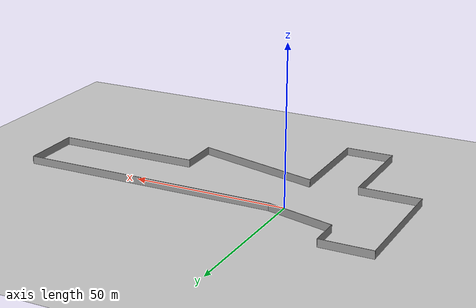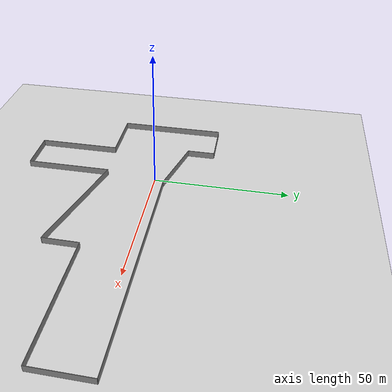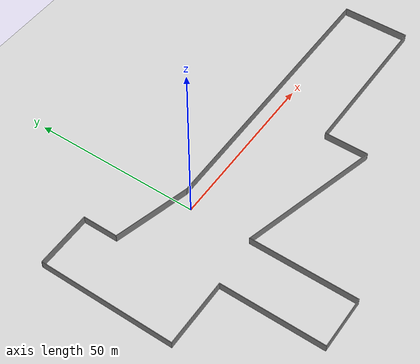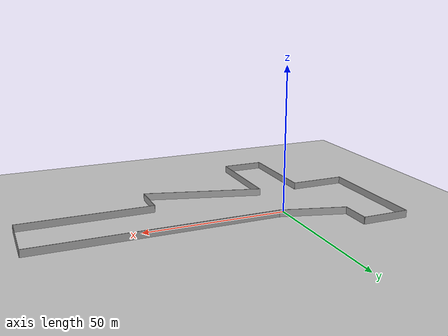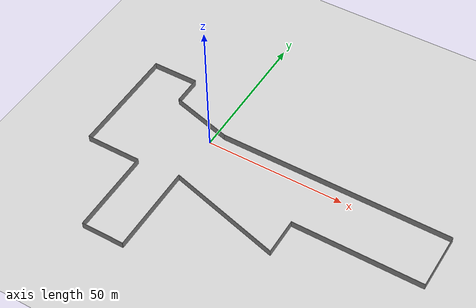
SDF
<sdf version="1.7">
 <world name="default">
  <light name="sun" type="directional">
   <pose>0 0 10 0 -0 0</pose>
   <diffuse>0.8 0.8 0.8 1</diffuse>
   <specular>0.2 0.2 0.2 1</specular>
   <attenuation>
    <range>1000</range>
    <constant>0.9</constant>
    <linear>0.01</linear>
    <quadratic>0.001</quadratic>
   </attenuation>
   <direction>-0.5 0.1 -0.9</direction>
   <spot><inner_angle>0</inner_angle><outer_angle>0</outer_angle><falloff>0</falloff></spot>
  </light>
  <model name="ground_plane">
   <static>1</static>
   <link name="link">
    <collision name="collision">
     <geometry><plane><normal>0 0 1</normal><size>100 100</size></plane></geometry>
     <surface><friction><ode><mu>100</mu><mu2>50</mu2></ode></friction></surface>
    </collision>
    <visual name="visual">
     <cast_shadows>0</cast_shadows>
     <geometry><plane><normal>0 0 1</normal><size>100 100</size></plane></geometry>
     <material>
      <script><uri>file://media/materials/scripts/gazebo.material</uri><name>Gazebo/Grey</name></script>
     </material>
    </visual>
   </link>
  </model>
  <gravity>0 0 -9.8</gravity>
  <magnetic_field>6e-06 2.3e-05 -4.2e-05</magnetic_field>
  <atmosphere type="adiabatic"/>
  <physics type="ode">
   <max_step_size>0.001</max_step_size>
   <real_time_factor>1</real_time_factor>
   <real_time_update_rate>1000</real_time_update_rate>
  </physics>
  <scene><ambient>0.4 0.4 0.4 1</ambient><background>0.7 0.7 0.7 1</background><shadows>1</shadows></scene>
  <audio><device>default</device></audio>
  <spherical_coordinates>
   <surface_model>EARTH_WGS84</surface_model>
   <latitude_deg>0</latitude_deg>
   <longitude_deg>0</longitude_deg>
   <elevation>0</elevation>
   <heading_deg>0</heading_deg>
  </spherical_coordinates>
  <model name="UTCH">
   <pose>25.8328 -14.9627 0 0 -0 0</pose>
   <link name="Wall_10">
    <collision name="Wall_10_Collision">
     <geometry><box><size>16.75 0.15 2.5</size></box></geometry>
     <pose>0 0 1.25 0 -0 0</pose>
    </collision>
    <visual name="Wall_10_Visual">
     <pose>0 0 1.25 0 -0 0</pose>
     <geometry><box><size>16.75 0.15 2.5</size></box></geometry>
     <material>
      <script><uri>file://media/materials/scripts/gazebo.material</uri><name>Gazebo/Grey</name></script>
      <ambient>1 1 1 1</ambient>
     </material>
     <meta><layer>0</layer></meta>
    </visual>
    <pose>-52.9285 35.1 0 0 -0 3.14159</pose>
   </link>
   <link name="Wall_11">
    <collision name="Wall_11_Collision">
     <geometry><box><size>40 0.15 2.5</size></box></geometry>
     <pose>0 0 1.25 0 -0 0</pose>
    </collision>
    <visual name="Wall_11_Visual">
     <pose>0 0 1.25 0 -0 0</pose>
     <geometry><box><size>40 0.15 2.5</size></box></geometry>
     <material>
      <script><uri>file://media/materials/scripts/gazebo.material</uri><name>Gazebo/Grey</name></script>
      <ambient>1 1 1 1</ambient>
     </material>
     <meta><layer>0</layer></meta>
    </visual>
    <pose>-61.2285 15.175 0 0 -0 -1.5708</pose>
   </link>
   <link name="Wall_12">
    <collision name="Wall_12_Collision">
     <geometry><box><size>20 0.15 2.5</size></box></geometry>
     <pose>0 0 1.25 0 -0 0</pose>
    </collision>
    <visual name="Wall_12_Visual">
     <pose>0 0 1.25 0 -0 0</pose>
     <geometry><box><size>20 0.15 2.5</size></box></geometry>
     <material>
      <script><uri>file://media/materials/scripts/gazebo.material</uri><name>Gazebo/Grey</name></script>
      <ambient>1 1 1 1</ambient>
     </material>
     <meta><layer>0</layer></meta>
    </visual>
    <pose>-51.3035 -4.75 0 0 -0 0</pose>
   </link>
   <link name="Wall_13">
    <collision name="Wall_13_Collision">
     <geometry><box><size>30.5 0.15 2.5</size></box></geometry>
     <pose>0 0 1.25 0 -0 0</pose>
    </collision>
    <visual name="Wall_13_Visual">
     <pose>0 0 1.25 0 -0 0</pose>
     <geometry><box><size>30.5 0.15 2.5</size></box></geometry>
     <material>
      <script><uri>file://media/materials/scripts/gazebo.material</uri><name>Gazebo/Grey</name></script>
      <ambient>1 1 1 1</ambient>
     </material>
     <meta><layer>0</layer></meta>
    </visual>
    <pose>-41.3785 -19.925 0 0 -0 -1.5708</pose>
   </link>
   <link name="Wall_14">
    <collision name="Wall_14_Collision">
     <geometry><box><size>15.5 0.15 2.5</size></box></geometry>
     <pose>0 0 1.25 0 -0 0</pose>
    </collision>
    <visual name="Wall_14_Visual">
     <pose>0 0 1.25 0 -0 0</pose>
     <geometry><box><size>15.5 0.15 2.5</size></box></geometry>
     <material>
      <script><uri>file://media/materials/scripts/gazebo.material</uri><name>Gazebo/Grey</name></script>
      <ambient>1 1 1 1</ambient>
     </material>
     <meta><layer>0</layer></meta>
    </visual>
    <pose>-33.7035 -35.1 0 0 -0 0</pose>
   </link>
   <link name="Wall_15">
    <collision name="Wall_15_Collision">
     <geometry><box><size>31.75 0.15 2.5</size></box></geometry>
     <pose>0 0 1.25 0 -0 0</pose>
    </collision>
    <visual name="Wall_15_Visual">
     <pose>0 0 1.25 0 -0 0</pose>
     <geometry><box><size>31.75 0.15 2.5</size></box></geometry>
     <material>
      <script><uri>file://media/materials/scripts/gazebo.material</uri><name>Gazebo/Grey</name></script>
      <ambient>1 1 1 1</ambient>
     </material>
     <meta><layer>0</layer></meta>
    </visual>
    <pose>-26.0285 -19.3 0 0 -0 1.5708</pose>
   </link>
   <link name="Wall_16">
    <collision name="Wall_16_Collision">
     <geometry><box><size>42.5 0.15 2.5</size></box></geometry>
     <pose>0 0 1.25 0 -0 0</pose>
    </collision>
    <visual name="Wall_16_Visual">
     <pose>0 0 1.25 0 -0 0</pose>
     <geometry><box><size>42.5 0.15 2.5</size></box></geometry>
     <material>
      <script><uri>file://media/materials/scripts/gazebo.material</uri><name>Gazebo/Grey</name></script>
      <ambient>1 1 1 1</ambient>
     </material>
     <meta><layer>0</layer></meta>
    </visual>
    <pose>-5.575 -8.98049 0 0 -0 -0.261799</pose>
   </link>
   <link name="Wall_17">
    <collision name="Wall_17_Collision">
     <geometry><box><size>13.25 0.15 2.5</size></box></geometry>
     <pose>0 0 1.25 0 -0 0</pose>
    </collision>
    <visual name="Wall_17_Visual">
     <pose>0 0 1.25 0 -0 0</pose>
     <geometry><box><size>13.25 0.15 2.5</size></box></geometry>
     <material>
      <script><uri>file://media/materials/scripts/gazebo.material</uri><name>Gazebo/Grey</name></script>
      <ambient>1 1 1 1</ambient>
     </material>
     <meta><layer>0</layer></meta>
    </visual>
    <pose>14.8785 -7.91099 0 0 -0 1.5708</pose>
   </link>
   <link name="Wall_18">
    <collision name="Wall_18_Collision">
     <geometry><box><size>46.5 0.15 2.5</size></box></geometry>
     <pose>0 0 1.25 0 -0 0</pose>
    </collision>
    <visual name="Wall_18_Visual">
     <pose>0 0 1.25 0 -0 0</pose>
     <geometry><box><size>46.5 0.15 2.5</size></box></geometry>
     <material>
      <script><uri>file://media/materials/scripts/gazebo.material</uri><name>Gazebo/Grey</name></script>
      <ambient>1 1 1 1</ambient>
     </material>
     <meta><layer>0</layer></meta>
    </visual>
    <pose>38.0535 -1.36099 0 0 -0 0</pose>
   </link>
   <link name="Wall_19">
    <collision name="Wall_19_Collision">
     <geometry><box><size>20.25 0.15 2.5</size></box></geometry>
     <pose>0 0 1.25 0 -0 0</pose>
    </collision>
    <visual name="Wall_19_Visual">
     <pose>0 0 1.25 0 -0 0</pose>
     <geometry><box><size>20.25 0.15 2.5</size></box></geometry>
     <material>
      <script><uri>file://media/materials/scripts/gazebo.material</uri><name>Gazebo/Grey</name></script>
      <ambient>1 1 1 1</ambient>
     </material>
     <meta><layer>0</layer></meta>
    </visual>
    <pose>61.2285 8.68901 0 0 -0 1.5708</pose>
   </link>
   <link name="Wall_20">
    <collision name="Wall_20_Collision">
     <geometry><box><size>83.75 0.15 2.5</size></box></geometry>
     <pose>0 0 1.25 0 -0 0</pose>
    </collision>
    <visual name="Wall_20_Visual">
     <pose>0 0 1.25 0 -0 0</pose>
     <geometry><box><size>83.75 0.15 2.5</size></box></geometry>
     <material>
      <script><uri>file://media/materials/scripts/gazebo.material</uri><name>Gazebo/Grey</name></script>
      <ambient>1 1 1 1</ambient>
     </material>
     <meta><layer>0</layer></meta>
    </visual>
    <pose>19.4285 18.739 0 0 -0 3.14159</pose>
   </link>
   <link name="Wall_22">
    <collision name="Wall_22_Collision">
     <geometry><box><size>23.2044 0.15 2.5</size></box></geometry>
     <pose>0 0 1.25 0 -0 0</pose>
    </collision>
    <visual name="Wall_22_Visual">
     <pose>0 0 1.25 0 -0 0</pose>
     <geometry><box><size>23.2044 0.15 2.5</size></box></geometry>
     <material>
      <script><uri>file://media/materials/scripts/gazebo.material</uri><name>Gazebo/Grey</name></script>
      <ambient>1 1 1 1</ambient>
     </material>
     <meta><layer>0</layer></meta>
    </visual>
    <pose>-33.5 21.7445 0 0 -0 2.87781</pose>
   </link>
   <link name="Wall_9">
    <collision name="Wall_9_Collision">
     <geometry><box><size>10.5 0.15 2.5</size></box></geometry>
     <pose>0 0 1.25 0 -0 0</pose>
    </collision>
    <visual name="Wall_9_Visual">
     <pose>0 0 1.25 0 -0 0</pose>
     <geometry><box><size>10.5 0.15 2.5</size></box></geometry>
     <material>
      <script><uri>file://media/materials/scripts/gazebo.material</uri><name>Gazebo/Grey</name></script>
      <ambient>1 1 1 1</ambient>
     </material>
     <meta><layer>0</layer></meta>
    </visual>
    <pose>-44.6285 29.925 0 0 -0 1.5708</pose>
   </link>
   <static>1</static>
  </model>
 </world>
</sdf>
